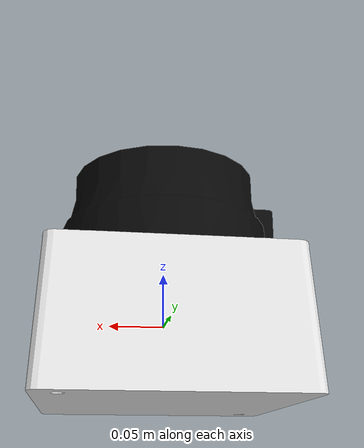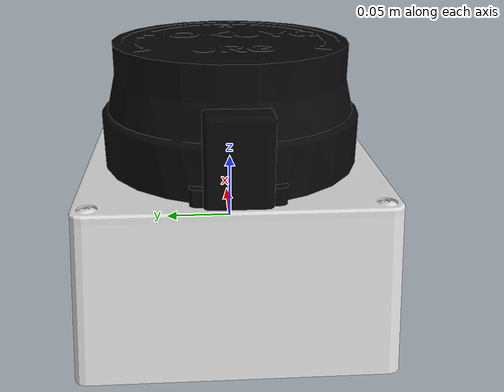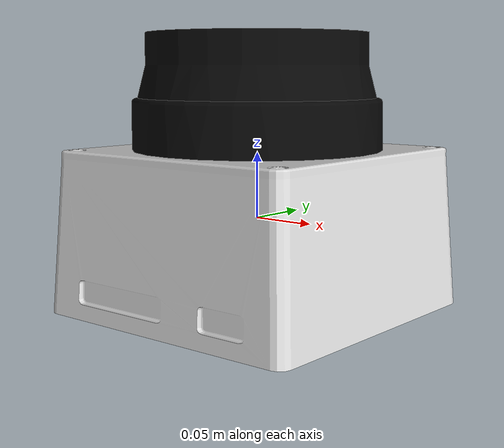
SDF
<?xml version="1.0" ?>
<sdf version="1.6">
	<model name="my camera">
		<pose>0 0 0.035 0 0 0</pose>
		<static>true</static>
		<link name="camera_link">
			<collision name="collision-base">
		        <pose>0 0 -0.0145 0 0 0</pose>
		        <geometry>
		          <box>
		            <size>0.05 0.05 0.041</size>
		          </box>
		        </geometry>
		      </collision>
		      <collision name="collision-top">
		        <pose>0 0 0.0205 0 0 0</pose>
		        <geometry>
		          <cylinder>
		            <radius>0.021</radius>
		            <length>0.029</length>
		          </cylinder>
		        </geometry>
		    </collision>
			<visual name="visual">
				<geometry>
				   <mesh>
			          <uri>model://hokuyo/meshes/hokuyo.dae</uri>
			          <scale>4.5 4.5 3</scale>
			        </mesh>
				</geometry>
			</visual>
			<sensor type="camera" name="camera1">
				<logical_camera>
					<near>0.55</near>
					<far>2.5</far>
					<horizontal_fov>1.0</horizontal_fov>
					<aspect_ratio>1.8</aspect_ratio>
				</logical_camera>
				<visualize>true</visualize>
				<always_on>true</always_on>
				<update_rate>10</update_rate>
				<plugin name="camera_controller" filename="libgazebo_ros_camera.so">
					<updateRate>0.0</updateRate>
			        <cameraName>mybot/camera1</cameraName>
			        <imageTopicName>image_raw</imageTopicName>
			        <cameraInfoTopicName>camera_info</cameraInfoTopicName>
			        <frameName>camera</frameName>
			        <hackBaseline>0.07</hackBaseline>
			        <distortionK1>0.0</distortionK1>
			        <distortionK2>0.0</distortionK2>
			        <distortionK3>0.0</distortionK3>
			        <distortionT1>0.0</distortionT1>
        			<distortionT2>0.0</distortionT2>
				</plugin>
			</sensor>
		</link>
	</model>
</sdf>
